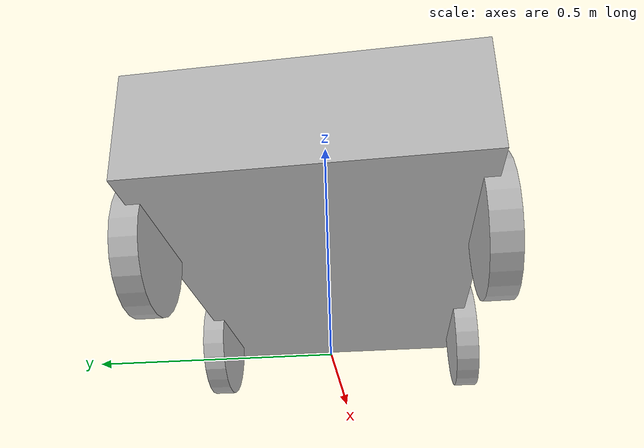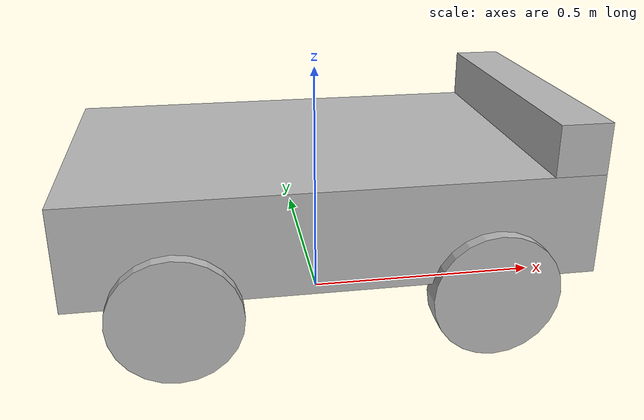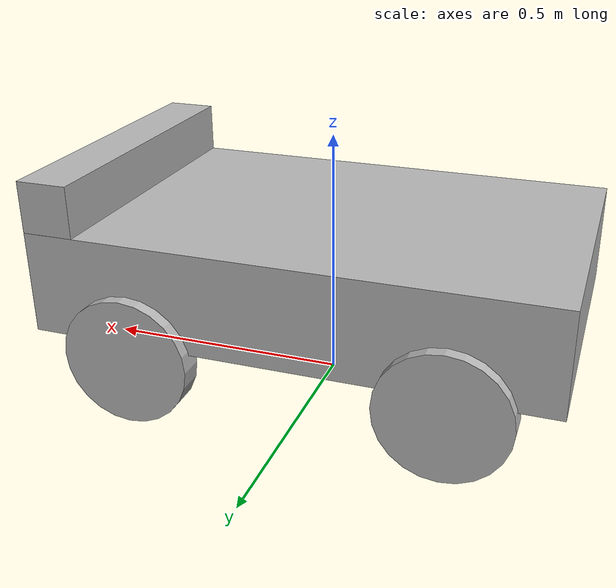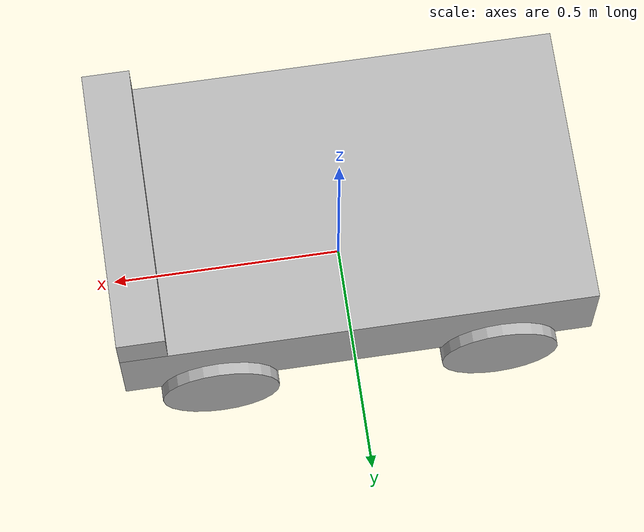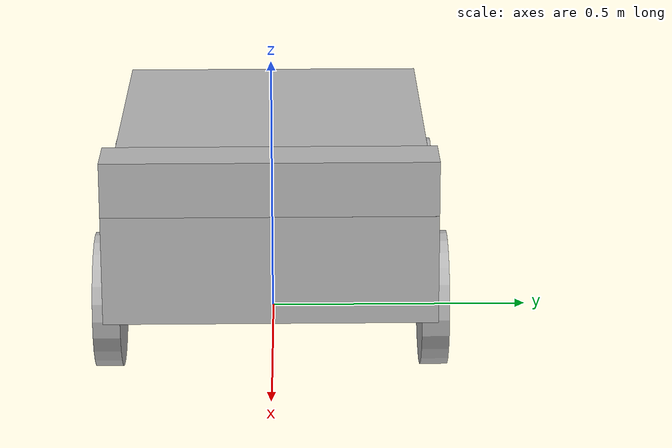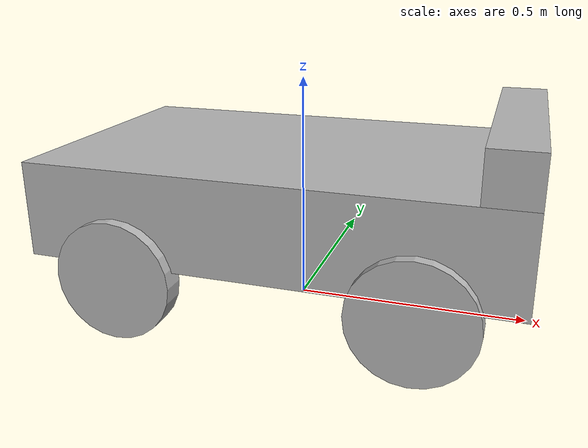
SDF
<?xml version='1.0'?>
<sdf version='1.4'>
  <model name="four_wheeled_car">
    <static>false</static>

    <link name='chassis'>
      <pose>0 0 .25 0 0 0</pose>

      <inertial>
        <mass>20.0</mass>
        <pose>-0.1 0 -0.1 0 0 0</pose>
        <inertia>
          <ixx>0.5</ixx>
          <iyy>1.0</iyy>
          <izz>0.1</izz>
        </inertia>
      </inertial>

      <collision name='collision'>
        <geometry>
          <box>
            <size>1 0.6 0.2</size>
          </box>
        </geometry>
      </collision>

      <visual name='visual'>
        <geometry>
          <box>
            <size>1 0.6 0.2</size>
          </box>
        </geometry>
      </visual>
   </link>

    <link name="left_wheel_A">
      <pose>0.3 0.3 0.125 0 1.5707 1.5707</pose>
      <collision name="collision">
        <geometry>
          <cylinder>
            <radius>.125</radius>
            <length>.05</length>
          </cylinder>
        </geometry>
      </collision>

      <visual name="visual">
        <geometry>
          <cylinder>
            <radius>.125</radius>
            <length>.05</length>
          </cylinder>
        </geometry>
      </visual>
    </link>

    <link name="left_wheel_B">
      <pose>-0.3 0.3 0.125 0 1.5707 1.5707</pose>
      <collision name="collision">
        <geometry>
          <cylinder>
            <radius>.125</radius>
            <length>.05</length>
          </cylinder>
        </geometry>
      </collision>

      <visual name="visual">
        <geometry>
          <cylinder>
            <radius>.125</radius>
            <length>.05</length>
          </cylinder>
        </geometry>
      </visual>
    </link>

    <link name="right_wheel_A">
      <pose>0.3 -0.3 0.125 0 1.5707 1.5707</pose>
      <collision name="collision">
        <geometry>
          <cylinder>
            <radius>.125</radius>
            <length>.05</length>
          </cylinder>
        </geometry>
      </collision>
      <visual name="visual">
        <geometry>
          <cylinder>
            <radius>.125</radius>
            <length>.05</length>
          </cylinder>
        </geometry>
      </visual>
    </link>

    <link name="right_wheel_B">
      <pose>-0.3 -0.3 0.125 0 1.5707 1.5707</pose>
      <collision name="collision">
        <geometry>
          <cylinder>
            <radius>.125</radius>
            <length>.05</length>
          </cylinder>
        </geometry>
      </collision>
      <visual name="visual">
        <geometry>
          <cylinder>
            <radius>.125</radius>
            <length>.05</length>
          </cylinder>
        </geometry>
      </visual>
    </link>

    <link name="holder">
      <pose>0.45 0 0.4 0 1.5707 1.5707</pose>
      <collision name="collision">
        <geometry>
          <box>
            <size>0.1 0.1 0.6</size>
          </box>
        </geometry>
      </collision>
      <visual name="visual">
        <geometry>
          <box>
            <size>0.1 0.1 0.6</size>
          </box>
        </geometry>
      </visual>
    </link>

    <joint type="revolute" name="left_wheel_hinge_A">
      <pose>0 0 -0.03 0 0 0</pose>
      <child>left_wheel_A</child>
      <parent>chassis</parent>
      <axis>
        <xyz>0 1 0</xyz>
      </axis>
    </joint>

    <joint type="revolute" name="left_wheel_hinge_B">
      <pose>0 0 -0.03 0 0 0</pose>
      <child>left_wheel_B</child>
      <parent>chassis</parent>
      <axis>
        <xyz>0 1 0</xyz>
      </axis>
    </joint>

    <joint type="revolute" name="right_wheel_hinge_A">
      <pose>0 0 0.03 0 0 0</pose>
      <child>right_wheel_A</child>
      <parent>chassis</parent>
      <axis>
        <xyz>0 1 0</xyz>
      </axis>
    </joint>

    <joint type="revolute" name="right_wheel_hinge_B">
      <pose>0 0 0.03 0 0 0</pose>
      <child>right_wheel_B</child>
      <parent>chassis</parent>
      <axis>
        <xyz>0 1 0</xyz>
      </axis>
    </joint>

    <joint type="fixed" name="fixed_hoder_joint">
      <pose>0 0 0 0 0 0</pose>
      <child>holder</child>
      <parent>chassis</parent>
    </joint>

  </model>
</sdf>
